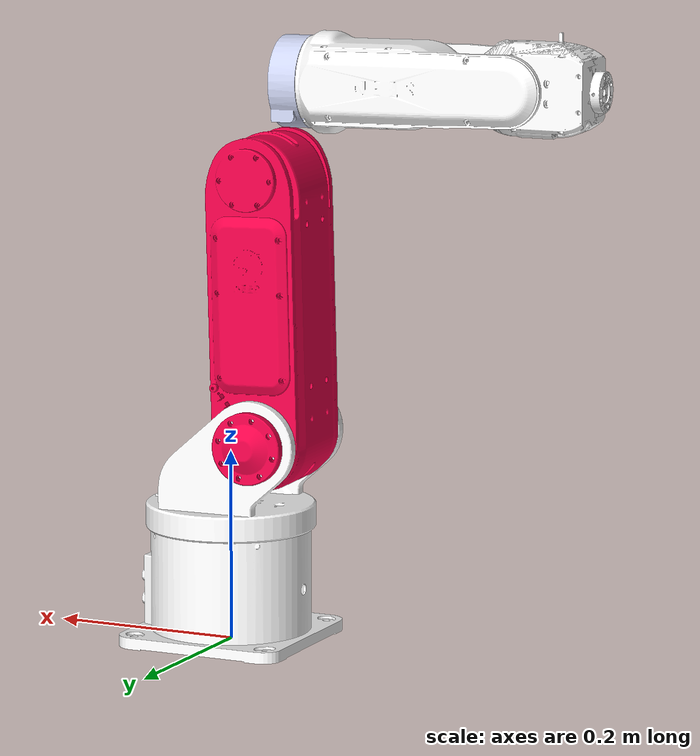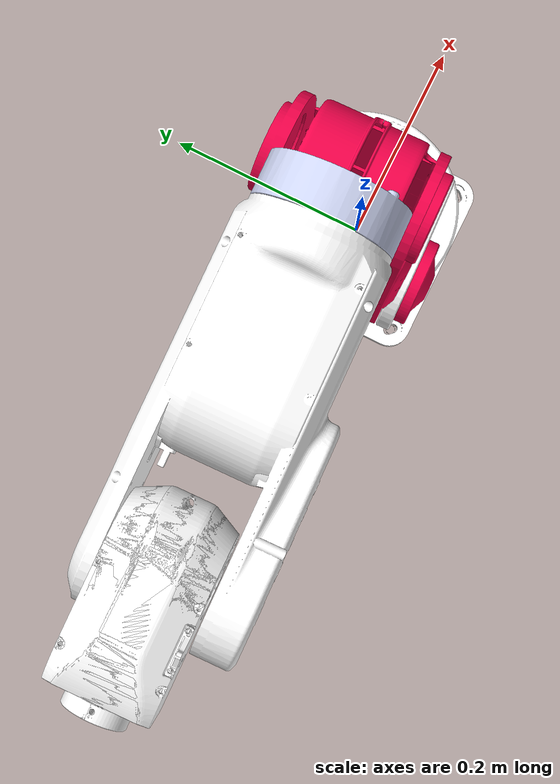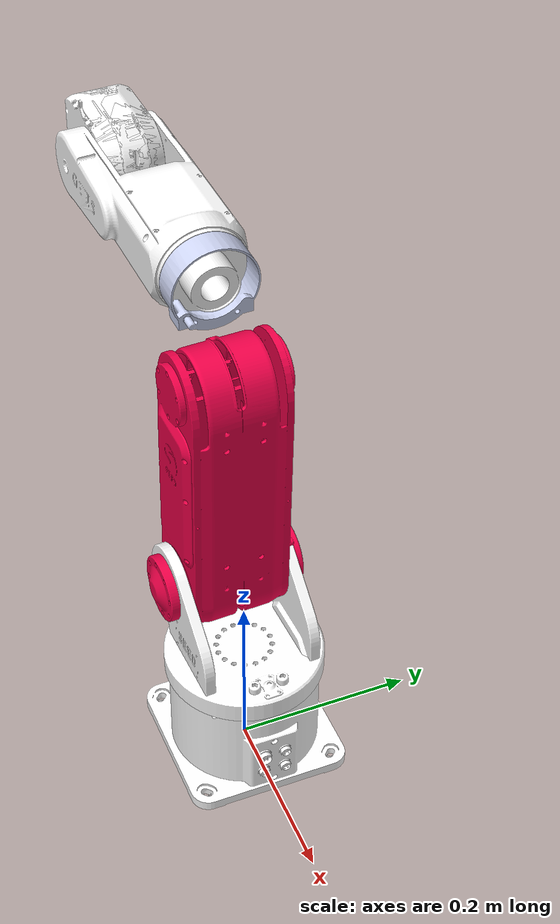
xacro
<?xml version="1.0" encoding="utf-8"?>
<robot
  name="sixaxis" xmlns:xacro="http://wiki.ros.org/xacro">
  <link
    name="base_link">
    <inertial>
      <origin
        xyz="-0.075441 -0.0044032 0.57925"
        rpy="0 0 0" />
      <mass
        value="0.028056" />
      <inertia
        ixx="5.3569E-05"
        ixy="9.6269E-07"
        ixz="1.3535E-06"
        iyy="2.871E-05"
        iyz="-6.7308E-07"
        izz="2.9632E-05" />
    </inertial>
    <visual>
      <origin
        xyz="0 0 0"
        rpy="0 0 0" />
      <geometry>
        <mesh
          filename="package://S6H4D_urdf_file/meshes/base_link.STL" />
      </geometry>
      <material
        name="">
        <color
          rgba="1 1 1 1" />
      </material>
    </visual>
    <collision>
      <origin
        xyz="0 0 0"
        rpy="0 0 0" />
      <geometry>
        <mesh
          filename="package://S6H4D_urdf_file/meshes/base_link.STL" />
      </geometry>
    </collision>
  </link>
  <link
    name="shoulder_link">
    <inertial>
      <origin
        xyz="-0.075547 -0.0018502 0.35915"
        rpy="0 0 0" />
      <mass
        value="0.028056" />
      <inertia
        ixx="5.3606E-05"
        ixy="1.2054E-07"
        ixz="1.3299E-06"
        iyy="2.8674E-05"
        iyz="-7.1845E-07"
        izz="2.9632E-05" />
    </inertial>
    <visual>
      <origin
        xyz="0 0 0"
        rpy="0 0 0" />
      <geometry>
        <mesh
          filename="package://S6H4D_urdf_file/meshes/shoulder_link.STL" />
      </geometry>
      <material
        name="">
        <color
          rgba="1 1 1 1" />
      </material>
    </visual>
    <collision>
      <origin
        xyz="0 0 0"
        rpy="0 0 0" />
      <geometry>
        <mesh
          filename="package://S6H4D_urdf_file/meshes/shoulder_link.STL" />
      </geometry>
    </collision>
  </link>
  <joint
    name="joint1"
    type="revolute">
    <origin
      xyz="0 0 0.2201"
      rpy="0 0 0.033814" />
    <parent
      link="base_link" />
    <child
      link="shoulder_link" />
    <axis
      xyz="0 0 -1" />
    <dynamics
      damping="0.7"/>
    <limit
      lower="-3.1416"
      upper="3.1416"
      effort="150"
      velocity="30" />
  </joint>
  <link
    name="upper_arm_link">
    <inertial>
      <origin
        xyz="0.36025 0.024547 -0.0014538"
        rpy="0 0 0" />
      <mass
        value="0.028056" />
      <inertia
        ixx="2.9632E-05"
        ixy="-1.3299E-06"
        ixz="7.1845E-07"
        iyy="5.3606E-05"
        iyz="1.2054E-07"
        izz="2.8674E-05" />
    </inertial>
    <visual>
      <origin
        xyz="0 0 0"
        rpy="0 0 0" />
      <geometry>
        <mesh
          filename="package://S6H4D_urdf_file/meshes/upper_arm_link.STL" />
      </geometry>
      <material
        name="">
        <color
          rgba="0.93725 0 0.28235 1" />
      </material>
    </visual>
    <collision>
      <origin
        xyz="0 0 0"
        rpy="0 0 0" />
      <geometry>
        <mesh
          filename="package://S6H4D_urdf_file/meshes/upper_arm_link.STL" />
      </geometry>
    </collision>
  </link>
  <joint
    name="joint2"
    type="revolute">
    <origin
      xyz="-0.051 -0.003304 -0.0011005"
      rpy="1.5708 -1.5708 0" />
    <parent
      link="shoulder_link" />
    <child
      link="upper_arm_link" />
    <axis
      xyz="0 0 -1" />
    <dynamics
      damping="0.7"/>
    <limit
      lower="-2.618"
      upper="2.618"
      effort="150"
      velocity="30" />
  </joint>
  <link
    name="foream_link">
    <inertial>
      <origin
        xyz="0.085346 0.031903 -0.0014538"
        rpy="0 0 0" />
      <mass
        value="0.028056" />
      <inertia
        ixx="2.9632E-05"
        ixy="-1.3299E-06"
        ixz="7.1845E-07"
        iyy="5.3606E-05"
        iyz="1.2054E-07"
        izz="2.8674E-05" />
    </inertial>
    <visual>
      <origin
        xyz="0 0 0"
        rpy="0 0 0" />
      <geometry>
        <mesh
          filename="package://S6H4D_urdf_file/meshes/foream_link.STL" />
      </geometry>
      <material
        name="">
        <color
          rgba="0.79608 0.82353 0.93725 1" />
      </material>
    </visual>
    <collision>
      <origin
        xyz="0 0 0"
        rpy="0 0 0" />
      <geometry>
        <mesh
          filename="package://S6H4D_urdf_file/meshes/foream_link.STL" />
      </geometry>
    </collision>
  </link>
  <joint
    name="joint3"
    type="revolute">
    <origin
      xyz="0.2749 -0.0073556 0"
      rpy="0 0 0" />
    <parent
      link="upper_arm_link" />
    <child
      link="foream_link" />
    <axis
      xyz="0 0 -1" />
    <dynamics
      damping="0.7"/>
    <limit
      lower="-2.9147"
      upper="3.1416"
      effort="150"
      velocity="30" />
  </joint>
  <link
    name="wrist_1_link">
    <inertial>
      <origin
        xyz="-0.011639 -0.0018502 0.033646"
        rpy="0 0 0" />
      <mass
        value="0.028056" />
      <inertia
        ixx="2.9632E-05"
        ixy="-7.1845E-07"
        ixz="-1.3299E-06"
        iyy="2.8674E-05"
        iyz="-1.2054E-07"
        izz="5.3606E-05" />
    </inertial>
    <visual>
      <origin
        xyz="0 0 0"
        rpy="0 0 0" />
      <geometry>
        <mesh
          filename="package://S6H4D_urdf_file/meshes/wrist_1_link.STL" />
      </geometry>
      <material
        name="">
        <color
          rgba="1 1 1 1" />
      </material>
    </visual>
    <collision>
      <origin
        xyz="0 0 0"
        rpy="0 0 0" />
      <geometry>
        <mesh
          filename="package://S6H4D_urdf_file/meshes/wrist_1_link.STL" />
      </geometry>
    </collision>
  </link>
  <joint
    name="joint4"
    type="revolute">
    <origin
      xyz="0.096984 -0.0017437 -0.003304"
      rpy="-1.5708 0 0" />
    <parent
      link="foream_link" />
    <child
      link="wrist_1_link" />
    <axis
      xyz="0.017976 0 0.99984" />
    <dynamics
      damping="0.7"/>
    <limit
      lower="-3.1416"
      upper="3.1416"
      effort="150"
      velocity="30" />
  </joint>
  <link
    name="wrist_2_link">
    <inertial>
      <origin
        xyz="-0.012249 -0.24257 0.0017997"
        rpy="0 0 0" />
      <mass
        value="0.028056" />
      <inertia
        ixx="2.9682E-05"
        ixy="-1.7605E-06"
        ixz="7.2033E-07"
        iyy="5.3551E-05"
        iyz="1.2618E-07"
        izz="2.868E-05" />
    </inertial>
    <visual>
      <origin
        xyz="0 0 0"
        rpy="0 0 0" />
      <geometry>
        <mesh
          filename="package://S6H4D_urdf_file/meshes/wrist_2_link.STL" />
      </geometry>
      <material
        name="">
        <color
          rgba="1 1 1 1" />
      </material>
    </visual>
    <collision>
      <origin
        xyz="0 0 0"
        rpy="0 0 0" />
      <geometry>
        <mesh
          filename="package://S6H4D_urdf_file/meshes/wrist_2_link.STL" />
      </geometry>
    </collision>
  </link>
  <joint
    name="joint5"
    type="revolute">
    <origin
      xyz="0.0049615 0 0.27596"
      rpy="1.5709 0.017977 0.0041228" />
    <parent
      link="wrist_1_link" />
    <child
      link="wrist_2_link" />
    <axis
      xyz="0 0 -1" />
    <dynamics
      damping="0.7"/>
    <limit
      lower="-1.5708"
      upper="1.5708"
      effort="150"
      velocity="30" />
  </joint>
  <link
    name="wrist_3_link">
    <inertial>
      <origin
        xyz="-0.016596 -0.0028693 -0.24231"
        rpy="0 0 0" />
      <mass
        value="0.028056" />
      <inertia
        ixx="2.9632E-05"
        ixy="-7.1856E-07"
        ixz="-1.3299E-06"
        iyy="2.8674E-05"
        iyz="-1.1857E-07"
        izz="5.3606E-05" />
    </inertial>
    <visual>
      <origin
        xyz="0 0 0"
        rpy="0 0 0" />
      <geometry>
        <mesh
          filename="package://S6H4D_urdf_file/meshes/wrist_3_link.STL" />
      </geometry>
      <material
        name="">
        <color
          rgba="1 1 1 1" />
      </material>
    </visual>
    <collision>
      <origin
        xyz="0 0 0"
        rpy="0 0 0" />
      <geometry>
        <mesh
          filename="package://S6H4D_urdf_file/meshes/wrist_3_link.STL" />
      </geometry>
    </collision>
  </link>
  <joint
    name="joint6"
    type="revolute">
    <origin
      xyz="0 0 -0.001"
      rpy="-1.5708 -0.0041214 0.017978" />
    <parent
      link="wrist_2_link" />
    <child
      link="wrist_3_link" />
    <axis
      xyz="0.0011963 0 -1" />
    <dynamics
      damping="0.7"/>
    <limit
      lower="-3.1416"
      upper="3.1416"
      effort="150"
      velocity="30" />
  </joint>
  <link name="world"/>
  <joint name="fixed" type="fixed">
     <parent link="world"/>
     <child link="base_link"/>
  </joint>
  <!-- Transmissions for ROS Control -->
  <xacro:macro name="transmission_block" params="tran_name joint_name motor_name">
    <transmission name="${tran_name}">
        <type>transmission_interface/SimpleTransmission</type>
        <joint name="${joint_name}">
            <hardwareInterface>hardware_interface/EffortJointInterface</hardwareInterface>
        </joint>
        <actuator name="$motor_name">
            <hardwareInterface>hardware_interface/EffortJointInterface</hardwareInterface>
            <mechanicalReduction>1</mechanicalReduction>
        </actuator>
    </transmission>
  </xacro:macro>

  <xacro:transmission_block tran_name="tran1" joint_name="joint1" motor_name="motor1"/>
  <xacro:transmission_block tran_name="tran2" joint_name="joint2" motor_name="motor2"/>
  <xacro:transmission_block tran_name="tran3" joint_name="joint3" motor_name="motor3"/>
  <xacro:transmission_block tran_name="tran4" joint_name="joint4" motor_name="motor4"/>
  <xacro:transmission_block tran_name="tran5" joint_name="joint5" motor_name="motor5"/>
  <xacro:transmission_block tran_name="tran6" joint_name="joint6" motor_name="motor6"/>
  <!--gazebo plugin-->
  <gazebo>
     <plugin name="gazebo_ros_control" filename="libgazebo_ros_control.so" />
     <plugin name="joint_state_publisher" filename="libgazebo_ros_joint_state_publisher.so">
         <robotNamespace>/sixaxis</robotNamespace>
         <updateRate>100</updateRate>
     </plugin>
  </gazebo>
</robot>
